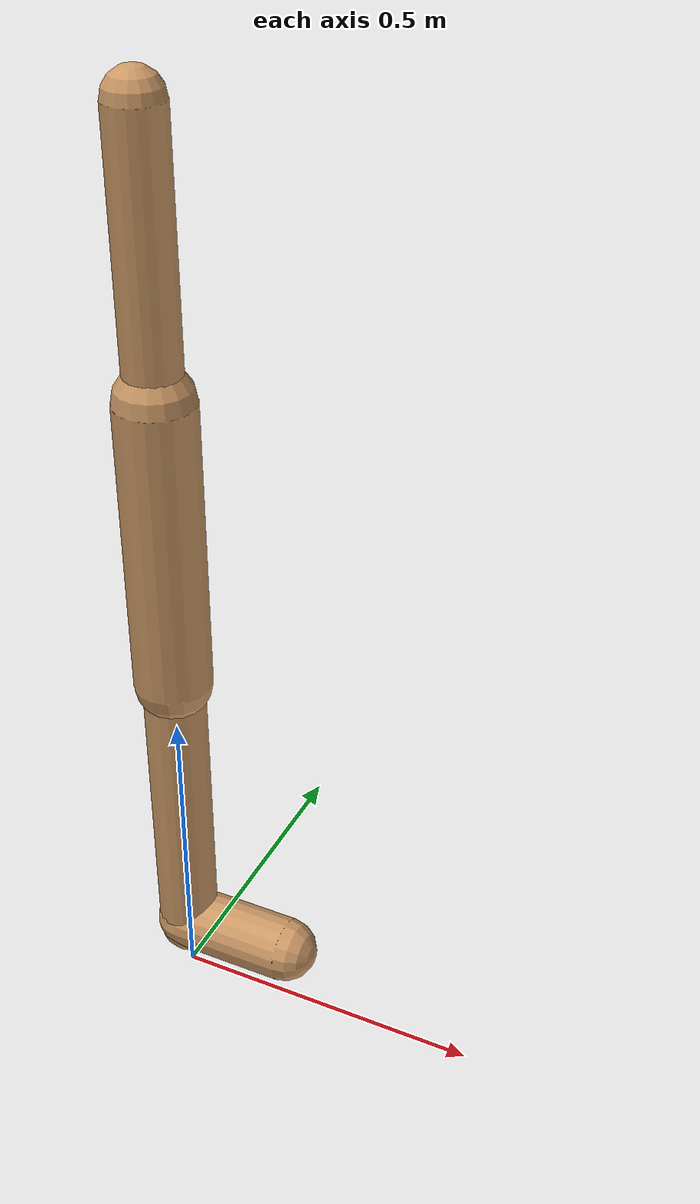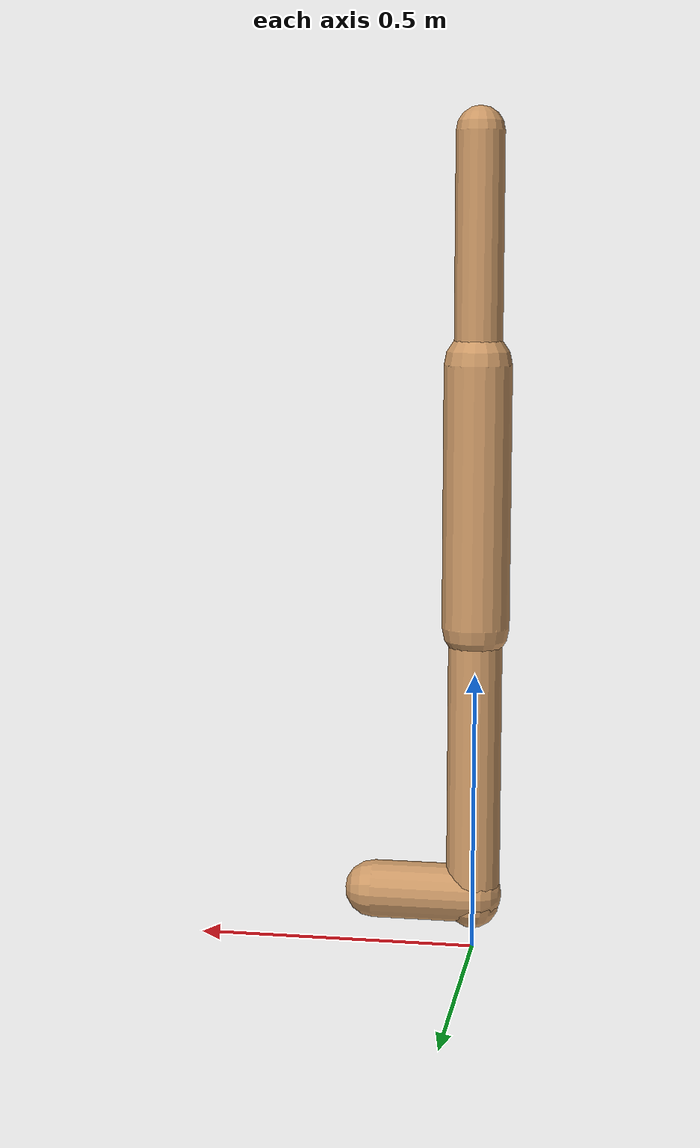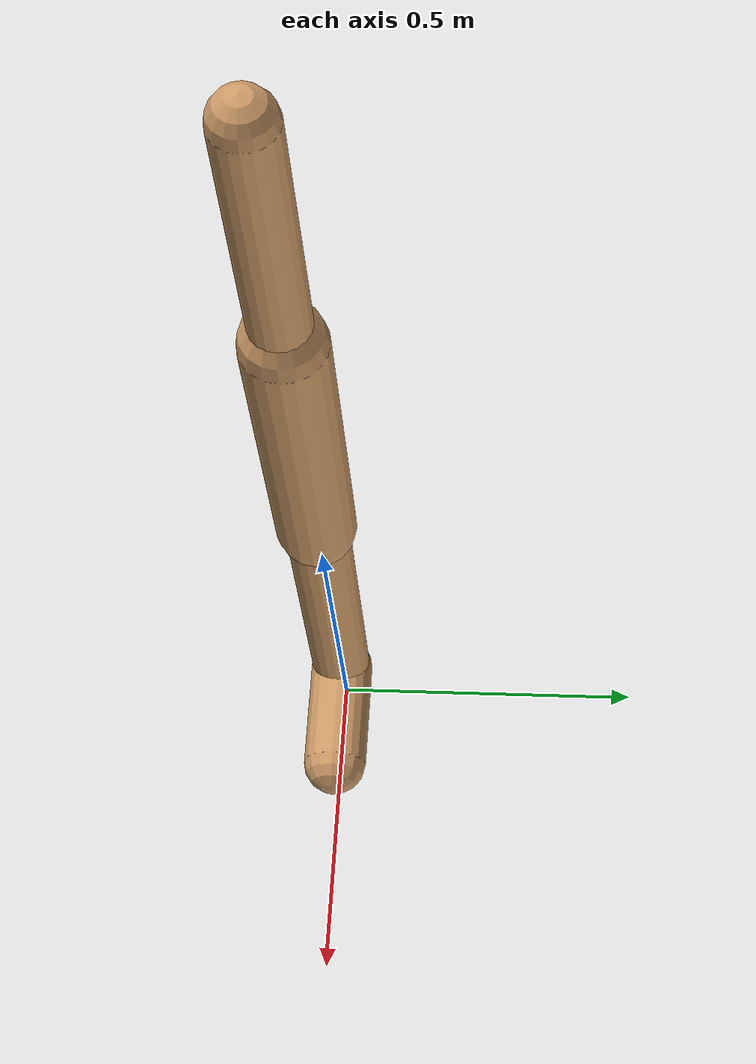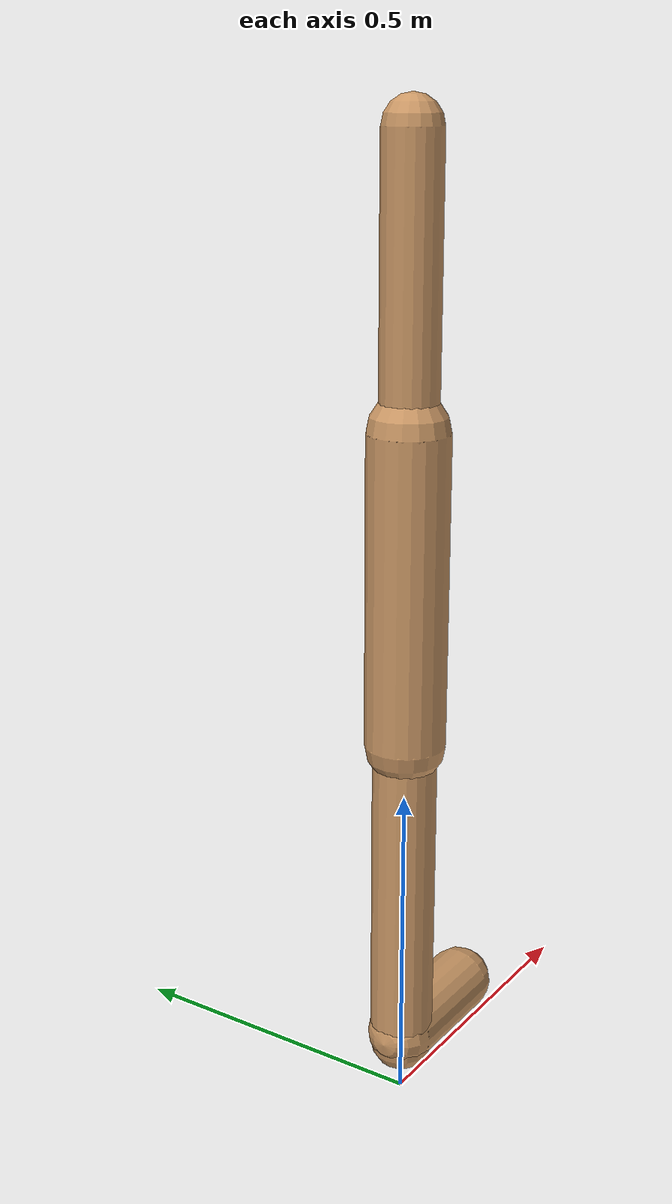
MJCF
<mujoco model="walker2d">
  <compiler angle="degree" coordinate="global" inertiafromgeom="true" />
  <default>
    <joint armature="0.01" damping=".1" limited="true" />
    <geom conaffinity="0" condim="3" contype="1" density="1000" friction="0.8 .1 .1" rgba="0.8 0.6 .4 1" />
  </default>
  <option integrator="RK4" timestep="0.002" />
  <worldbody>

    <body name="torso" pos="0 0 0.026896449695730996">
      <joint armature="0" axis="1 0 0" damping="0" limited="false" name="ignorex" pos="0 0 0" stiffness="0" type="slide" />
      <joint armature="0" axis="0 0 1" damping="0" limited="false" name="ignorez" pos="0 0 0" ref="1.25" stiffness="0" type="slide" />
      <joint armature="0" axis="0 1 0" damping="0" limited="false" name="ignorey" pos="0 0 0" stiffness="0" type="hinge" />
      <geom fromto="0 0 1.45 0 0 1.05" name="torso_geom" size="0.0425639892990812" type="capsule" />
      <body name="thigh">
        <joint axis="0 -1 0" name="thigh_joint" pos="0 0 1.05" range="-150 0" type="hinge" />
        <geom fromto="0.0 0.0 1.05 0.0 0.0 0.5872595764599169" name="thigh_geom" size="0.059953464210116575" type="capsule" />
        <body name="leg" pos="0.0 0.0 -0.01274042354008309">
          <joint axis="0 -1 0" name="leg_joint" pos="0 0 0.6" range="-150 0" type="hinge" />
          <geom fromto="0.0 0.0 0.6 0.0 0.0 0.0858439738443521" name="leg_geom" size="0.04796277136809326" type="capsule" />
          <body name="foot" pos="0.0 0.0 -0.0141560261556479">
            <joint axis="0 -1 0" name="foot_joint" pos="0 0 0.1" range="-45 45" type="hinge" />
            <geom fromto="0.0 0.0 0.1 0.1805037388404926 0.0 0.1" name="foot_geom" size="0.05165431186671642" type="capsule" />
          </body>
        </body>
      </body>

      <body name="thigh_left">
        <joint axis="0 -1 0" name="thigh_left_joint" pos="0 0 1.05" range="-150 0" type="hinge" />
        <geom fromto="0.0 0.0 1.05 0.0 0.0 0.5872595764599169" name="thigh_left_geom" rgba=".7 .3 .6 1" size="0.059953464210116575" type="capsule" />
        <body name="leg_left" pos="0.0 0.0 -0.01274042354008309">
          <joint axis="0 -1 0" name="leg_left_joint" pos="0 0 0.6" range="-150 0" type="hinge" />
          <geom fromto="0.0 0.0 0.6 0.0 0.0 0.0858439738443521" name="leg_left_geom" rgba=".7 .3 .6 1" size="0.04796277136809326" type="capsule" />
          <body name="foot_left" pos="0.0 0.0 -0.0141560261556479">
            <joint axis="0 -1 0" name="foot_left_joint" pos="0 0 0.1" range="-45 45" type="hinge" />
            <geom fromto="0.0 0.0 0.1 0.1805037388404926 0.0 0.1" name="foot_left_geom" rgba=".7 .3 .6 1" size="0.05165431186671642" type="capsule" />
          </body>
        </body>
      </body>
    </body>
  </worldbody>
  <actuator>

    <motor ctrllimited="true" ctrlrange="-1.0 1.0" gear="100" joint="thigh_joint" />
    <motor ctrllimited="true" ctrlrange="-1.0 1.0" gear="100" joint="leg_joint" />
    <motor ctrllimited="true" ctrlrange="-1.0 1.0" gear="100" joint="foot_joint" />
    <motor ctrllimited="true" ctrlrange="-1.0 1.0" gear="100" joint="thigh_left_joint" />
    <motor ctrllimited="true" ctrlrange="-1.0 1.0" gear="100" joint="leg_left_joint" />
    <motor ctrllimited="true" ctrlrange="-1.0 1.0" gear="100" joint="foot_left_joint" />

  </actuator>
</mujoco>
